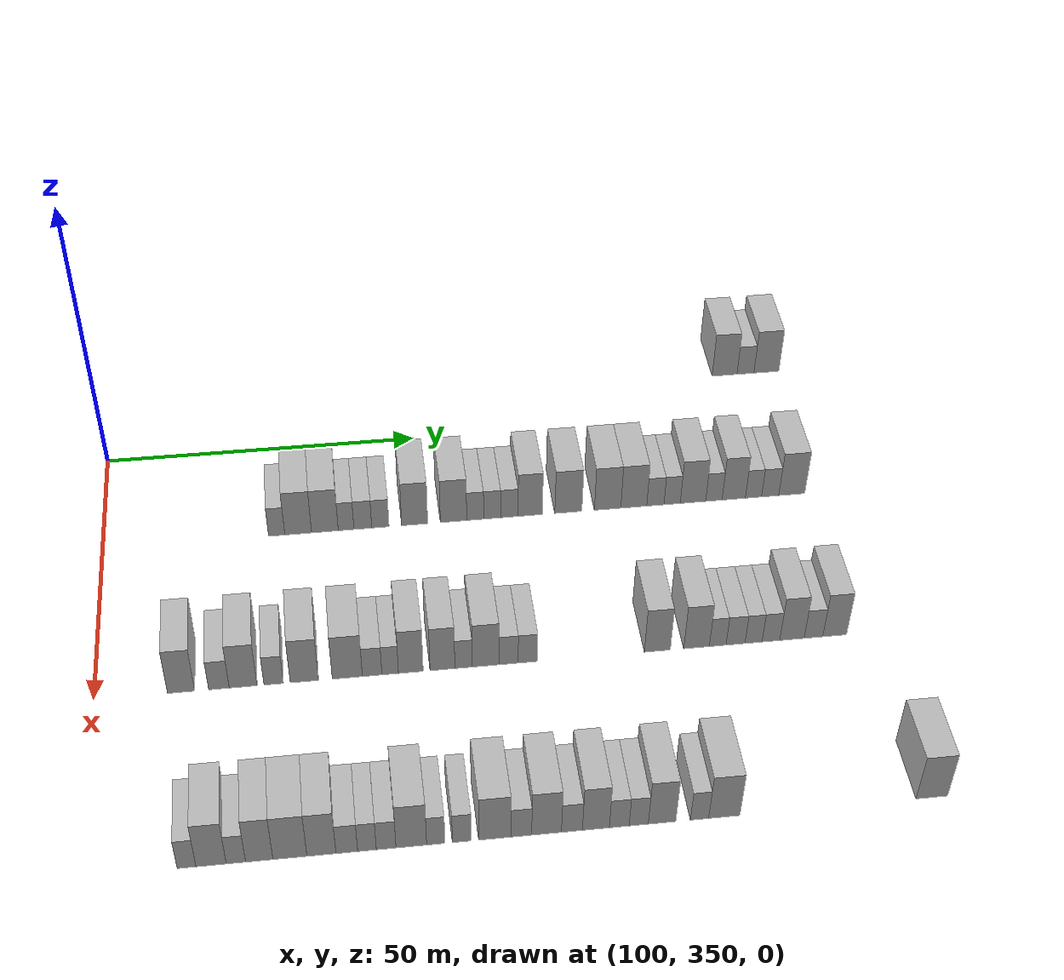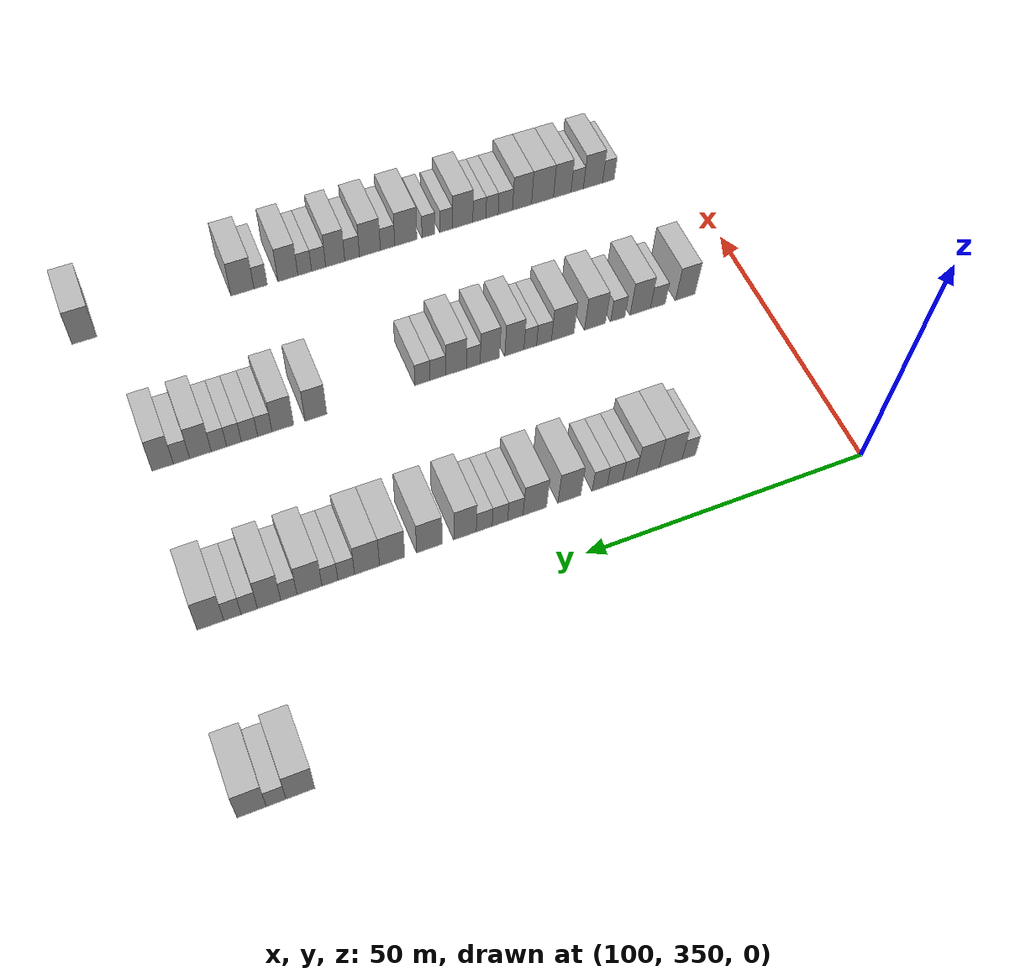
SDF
<sdf version="1.6">
 <world name="default">
  <model name="building_679">
   <static>1</static>
   <pose>85.0000 454.4036 0 0.000000 0.000000 0.000000</pose>
   <link name="link">
    <pose>0 0 4.50 0 0 0</pose>
    <collision name="collision"><geometry><box><size>10.0000 4.3484 9.0000</size></box></geometry></collision>
    <visual name="visual">
     <cast_shadows>0</cast_shadows>
     <geometry><box><size>10.0000 4.3484 9.0000</size></box></geometry>
     <material>
      <script>
       <uri>model://HANNAS_wall/materials/scripts</uri>
       <uri>model://HANNAS_wall/materials/textures</uri>
       <name>vrc/HANNAS_wall</name>
      </script>
     </material>
    </visual>
   </link>
  </model>
  <model name="building_680">
   <static>1</static>
   <pose>85.0000 458.0594 0 0.000000 0.000000 0.000000</pose>
   <link name="link">
    <pose>0 0 3.00 0 0 0</pose>
    <collision name="collision"><geometry><box><size>10.0000 2.9632 6.0000</size></box></geometry></collision>
    <visual name="visual">
     <cast_shadows>0</cast_shadows>
     <geometry><box><size>10.0000 2.9632 6.0000</size></box></geometry>
     <material>
      <script>
       <uri>model://HANNAS_wall/materials/scripts</uri>
       <uri>model://HANNAS_wall/materials/textures</uri>
       <name>vrc/HANNAS_wall</name>
      </script>
     </material>
    </visual>
   </link>
  </model>
  <model name="building_681">
   <static>1</static>
   <pose>85.0000 461.7241 0 0.000000 0.000000 0.000000</pose>
   <link name="link">
    <pose>0 0 4.50 0 0 0</pose>
    <collision name="collision"><geometry><box><size>10.0000 4.3664 9.0000</size></box></geometry></collision>
    <visual name="visual">
     <cast_shadows>0</cast_shadows>
     <geometry><box><size>10.0000 4.3664 9.0000</size></box></geometry>
     <material>
      <script>
       <uri>model://HANNAS_wall/materials/scripts</uri>
       <uri>model://HANNAS_wall/materials/textures</uri>
       <name>vrc/HANNAS_wall</name>
      </script>
     </material>
    </visual>
   </link>
  </model>
  <model name="building_883">
   <static>1</static>
   <pose>115.0000 376.9074 0 0.000000 0.000000 0.000000</pose>
   <link name="link">
    <pose>0 0 3.00 0 0 0</pose>
    <collision name="collision"><geometry><box><size>10.0000 2.5185 6.0000</size></box></geometry></collision>
    <visual name="visual">
     <cast_shadows>0</cast_shadows>
     <geometry><box><size>10.0000 2.5185 6.0000</size></box></geometry>
     <material>
      <script>
       <uri>model://HANNAS_wall/materials/scripts</uri>
       <uri>model://HANNAS_wall/materials/textures</uri>
       <name>vrc/HANNAS_wall</name>
      </script>
     </material>
    </visual>
   </link>
  </model>
  <model name="building_884">
   <static>1</static>
   <pose>115.0000 380.2617 0 0.000000 0.000000 0.000000</pose>
   <link name="link">
    <pose>0 0 4.50 0 0 0</pose>
    <collision name="collision"><geometry><box><size>10.0000 4.1900 9.0000</size></box></geometry></collision>
    <visual name="visual">
     <cast_shadows>0</cast_shadows>
     <geometry><box><size>10.0000 4.1900 9.0000</size></box></geometry>
     <material>
      <script>
       <uri>model://HANNAS_wall/materials/scripts</uri>
       <uri>model://HANNAS_wall/materials/textures</uri>
       <name>vrc/HANNAS_wall</name>
      </script>
     </material>
    </visual>
   </link>
  </model>
  <model name="building_885">
   <static>1</static>
   <pose>115.0000 384.4432 0 0.000000 0.000000 0.000000</pose>
   <link name="link">
    <pose>0 0 4.50 0 0 0</pose>
    <collision name="collision"><geometry><box><size>10.0000 4.1730 9.0000</size></box></geometry></collision>
    <visual name="visual">
     <cast_shadows>0</cast_shadows>
     <geometry><box><size>10.0000 4.1730 9.0000</size></box></geometry>
     <material>
      <script>
       <uri>model://HANNAS_wall/materials/scripts</uri>
       <uri>model://HANNAS_wall/materials/textures</uri>
       <name>vrc/HANNAS_wall</name>
      </script>
     </material>
    </visual>
   </link>
  </model>
  <model name="building_886">
   <static>1</static>
   <pose>115.0000 387.7569 0 0.000000 0.000000 0.000000</pose>
   <link name="link">
    <pose>0 0 3.00 0 0 0</pose>
    <collision name="collision"><geometry><box><size>10.0000 2.4545 6.0000</size></box></geometry></collision>
    <visual name="visual">
     <cast_shadows>0</cast_shadows>
     <geometry><box><size>10.0000 2.4545 6.0000</size></box></geometry>
     <material>
      <script>
       <uri>model://HANNAS_wall/materials/scripts</uri>
       <uri>model://HANNAS_wall/materials/textures</uri>
       <name>vrc/HANNAS_wall</name>
      </script>
     </material>
    </visual>
   </link>
  </model>
  <model name="building_887">
   <static>1</static>
   <pose>115.0000 390.3828 0 0.000000 0.000000 0.000000</pose>
   <link name="link">
    <pose>0 0 3.00 0 0 0</pose>
    <collision name="collision"><geometry><box><size>10.0000 2.7973 6.0000</size></box></geometry></collision>
    <visual name="visual">
     <cast_shadows>0</cast_shadows>
     <geometry><box><size>10.0000 2.7973 6.0000</size></box></geometry>
     <material>
      <script>
       <uri>model://HANNAS_wall/materials/scripts</uri>
       <uri>model://HANNAS_wall/materials/textures</uri>
       <name>vrc/HANNAS_wall</name>
      </script>
     </material>
    </visual>
   </link>
  </model>
  <model name="building_888">
   <static>1</static>
   <pose>115.0000 393.1407 0 0.000000 0.000000 0.000000</pose>
   <link name="link">
    <pose>0 0 3.00 0 0 0</pose>
    <collision name="collision"><geometry><box><size>10.0000 2.7185 6.0000</size></box></geometry></collision>
    <visual name="visual">
     <cast_shadows>0</cast_shadows>
     <geometry><box><size>10.0000 2.7185 6.0000</size></box></geometry>
     <material>
      <script>
       <uri>model://HANNAS_wall/materials/scripts</uri>
       <uri>model://HANNAS_wall/materials/textures</uri>
       <name>vrc/HANNAS_wall</name>
      </script>
     </material>
    </visual>
   </link>
  </model>
  <model name="building_889">
   <static>1</static>
   <pose>115.0000 398.5494 0 0.000000 0.000000 0.000000</pose>
   <link name="link">
    <pose>0 0 4.50 0 0 0</pose>
    <collision name="collision"><geometry><box><size>10.0000 4.0991 9.0000</size></box></geometry></collision>
    <visual name="visual">
     <cast_shadows>0</cast_shadows>
     <geometry><box><size>10.0000 4.0991 9.0000</size></box></geometry>
     <material>
      <script>
       <uri>model://HANNAS_wall/materials/scripts</uri>
       <uri>model://HANNAS_wall/materials/textures</uri>
       <name>vrc/HANNAS_wall</name>
      </script>
     </material>
    </visual>
   </link>
  </model>
  <model name="building_890">
   <static>1</static>
   <pose>115.0000 404.6810 0 0.000000 0.000000 0.000000</pose>
   <link name="link">
    <pose>0 0 4.50 0 0 0</pose>
    <collision name="collision"><geometry><box><size>10.0000 4.1640 9.0000</size></box></geometry></collision>
    <visual name="visual">
     <cast_shadows>0</cast_shadows>
     <geometry><box><size>10.0000 4.1640 9.0000</size></box></geometry>
     <material>
      <script>
       <uri>model://HANNAS_wall/materials/scripts</uri>
       <uri>model://HANNAS_wall/materials/textures</uri>
       <name>vrc/HANNAS_wall</name>
      </script>
     </material>
    </visual>
   </link>
  </model>
  <model name="building_891">
   <static>1</static>
   <pose>115.0000 408.1028 0 0.000000 0.000000 0.000000</pose>
   <link name="link">
    <pose>0 0 3.00 0 0 0</pose>
    <collision name="collision"><geometry><box><size>10.0000 2.6796 6.0000</size></box></geometry></collision>
    <visual name="visual">
     <cast_shadows>0</cast_shadows>
     <geometry><box><size>10.0000 2.6796 6.0000</size></box></geometry>
     <material>
      <script>
       <uri>model://HANNAS_wall/materials/scripts</uri>
       <uri>model://HANNAS_wall/materials/textures</uri>
       <name>vrc/HANNAS_wall</name>
      </script>
     </material>
    </visual>
   </link>
  </model>
  <model name="building_892">
   <static>1</static>
   <pose>115.0000 410.7962 0 0.000000 0.000000 0.000000</pose>
   <link name="link">
    <pose>0 0 3.00 0 0 0</pose>
    <collision name="collision"><geometry><box><size>10.0000 2.7072 6.0000</size></box></geometry></collision>
    <visual name="visual">
     <cast_shadows>0</cast_shadows>
     <geometry><box><size>10.0000 2.7072 6.0000</size></box></geometry>
     <material>
      <script>
       <uri>model://HANNAS_wall/materials/scripts</uri>
       <uri>model://HANNAS_wall/materials/textures</uri>
       <name>vrc/HANNAS_wall</name>
      </script>
     </material>
    </visual>
   </link>
  </model>
  <model name="building_893">
   <static>1</static>
   <pose>115.0000 413.5262 0 0.000000 0.000000 0.000000</pose>
   <link name="link">
    <pose>0 0 3.00 0 0 0</pose>
    <collision name="collision"><geometry><box><size>10.0000 2.7527 6.0000</size></box></geometry></collision>
    <visual name="visual">
     <cast_shadows>0</cast_shadows>
     <geometry><box><size>10.0000 2.7527 6.0000</size></box></geometry>
     <material>
      <script>
       <uri>model://HANNAS_wall/materials/scripts</uri>
       <uri>model://HANNAS_wall/materials/textures</uri>
       <name>vrc/HANNAS_wall</name>
      </script>
     </material>
    </visual>
   </link>
  </model>
  <model name="building_894">
   <static>1</static>
   <pose>115.0000 416.8444 0 0.000000 0.000000 0.000000</pose>
   <link name="link">
    <pose>0 0 4.50 0 0 0</pose>
    <collision name="collision"><geometry><box><size>10.0000 3.8837 9.0000</size></box></geometry></collision>
    <visual name="visual">
     <cast_shadows>0</cast_shadows>
     <geometry><box><size>10.0000 3.8837 9.0000</size></box></geometry>
     <material>
      <script>
       <uri>model://HANNAS_wall/materials/scripts</uri>
       <uri>model://HANNAS_wall/materials/textures</uri>
       <name>vrc/HANNAS_wall</name>
      </script>
     </material>
    </visual>
   </link>
  </model>
  <model name="building_895">
   <static>1</static>
   <pose>115.0000 422.9565 0 0.000000 0.000000 0.000000</pose>
   <link name="link">
    <pose>0 0 4.50 0 0 0</pose>
    <collision name="collision"><geometry><box><size>10.0000 4.3405 9.0000</size></box></geometry></collision>
    <visual name="visual">
     <cast_shadows>0</cast_shadows>
     <geometry><box><size>10.0000 4.3405 9.0000</size></box></geometry>
     <material>
      <script>
       <uri>model://HANNAS_wall/materials/scripts</uri>
       <uri>model://HANNAS_wall/materials/textures</uri>
       <name>vrc/HANNAS_wall</name>
      </script>
     </material>
    </visual>
   </link>
  </model>
  <model name="building_896">
   <static>1</static>
   <pose>115.0000 429.2485 0 0.000000 0.000000 0.000000</pose>
   <link name="link">
    <pose>0 0 4.50 0 0 0</pose>
    <collision name="collision"><geometry><box><size>10.0000 4.2434 9.0000</size></box></geometry></collision>
    <visual name="visual">
     <cast_shadows>0</cast_shadows>
     <geometry><box><size>10.0000 4.2434 9.0000</size></box></geometry>
     <material>
      <script>
       <uri>model://HANNAS_wall/materials/scripts</uri>
       <uri>model://HANNAS_wall/materials/textures</uri>
       <name>vrc/HANNAS_wall</name>
      </script>
     </material>
    </visual>
   </link>
  </model>
  <model name="building_897">
   <static>1</static>
   <pose>115.0000 433.4605 0 0.000000 0.000000 0.000000</pose>
   <link name="link">
    <pose>0 0 4.50 0 0 0</pose>
    <collision name="collision"><geometry><box><size>10.0000 4.1806 9.0000</size></box></geometry></collision>
    <visual name="visual">
     <cast_shadows>0</cast_shadows>
     <geometry><box><size>10.0000 4.1806 9.0000</size></box></geometry>
     <material>
      <script>
       <uri>model://HANNAS_wall/materials/scripts</uri>
       <uri>model://HANNAS_wall/materials/textures</uri>
       <name>vrc/HANNAS_wall</name>
      </script>
     </material>
    </visual>
   </link>
  </model>
  <model name="building_898">
   <static>1</static>
   <pose>115.0000 436.9382 0 0.000000 0.000000 0.000000</pose>
   <link name="link">
    <pose>0 0 3.00 0 0 0</pose>
    <collision name="collision"><geometry><box><size>10.0000 2.7749 6.0000</size></box></geometry></collision>
    <visual name="visual">
     <cast_shadows>0</cast_shadows>
     <geometry><box><size>10.0000 2.7749 6.0000</size></box></geometry>
     <material>
      <script>
       <uri>model://HANNAS_wall/materials/scripts</uri>
       <uri>model://HANNAS_wall/materials/textures</uri>
       <name>vrc/HANNAS_wall</name>
      </script>
     </material>
    </visual>
   </link>
  </model>
  <model name="building_899">
   <static>1</static>
   <pose>115.0000 439.6404 0 0.000000 0.000000 0.000000</pose>
   <link name="link">
    <pose>0 0 3.00 0 0 0</pose>
    <collision name="collision"><geometry><box><size>10.0000 2.6295 6.0000</size></box></geometry></collision>
    <visual name="visual">
     <cast_shadows>0</cast_shadows>
     <geometry><box><size>10.0000 2.6295 6.0000</size></box></geometry>
     <material>
      <script>
       <uri>model://HANNAS_wall/materials/scripts</uri>
       <uri>model://HANNAS_wall/materials/textures</uri>
       <name>vrc/HANNAS_wall</name>
      </script>
     </material>
    </visual>
   </link>
  </model>
  <model name="building_900">
   <static>1</static>
   <pose>115.0000 443.0121 0 0.000000 0.000000 0.000000</pose>
   <link name="link">
    <pose>0 0 4.50 0 0 0</pose>
    <collision name="collision"><geometry><box><size>10.0000 4.1140 9.0000</size></box></geometry></collision>
    <visual name="visual">
     <cast_shadows>0</cast_shadows>
     <geometry><box><size>10.0000 4.1140 9.0000</size></box></geometry>
     <material>
      <script>
       <uri>model://HANNAS_wall/materials/scripts</uri>
       <uri>model://HANNAS_wall/materials/textures</uri>
       <name>vrc/HANNAS_wall</name>
      </script>
     </material>
    </visual>
   </link>
  </model>
  <model name="building_901">
   <static>1</static>
   <pose>115.0000 446.3985 0 0.000000 0.000000 0.000000</pose>
   <link name="link">
    <pose>0 0 3.00 0 0 0</pose>
    <collision name="collision"><geometry><box><size>10.0000 2.6588 6.0000</size></box></geometry></collision>
    <visual name="visual">
     <cast_shadows>0</cast_shadows>
     <geometry><box><size>10.0000 2.6588 6.0000</size></box></geometry>
     <material>
      <script>
       <uri>model://HANNAS_wall/materials/scripts</uri>
       <uri>model://HANNAS_wall/materials/textures</uri>
       <name>vrc/HANNAS_wall</name>
      </script>
     </material>
    </visual>
   </link>
  </model>
  <model name="building_902">
   <static>1</static>
   <pose>115.0000 449.6192 0 0.000000 0.000000 0.000000</pose>
   <link name="link">
    <pose>0 0 4.50 0 0 0</pose>
    <collision name="collision"><geometry><box><size>10.0000 3.7826 9.0000</size></box></geometry></collision>
    <visual name="visual">
     <cast_shadows>0</cast_shadows>
     <geometry><box><size>10.0000 3.7826 9.0000</size></box></geometry>
     <material>
      <script>
       <uri>model://HANNAS_wall/materials/scripts</uri>
       <uri>model://HANNAS_wall/materials/textures</uri>
       <name>vrc/HANNAS_wall</name>
      </script>
     </material>
    </visual>
   </link>
  </model>
  <model name="building_903">
   <static>1</static>
   <pose>115.0000 452.8321 0 0.000000 0.000000 0.000000</pose>
   <link name="link">
    <pose>0 0 3.00 0 0 0</pose>
    <collision name="collision"><geometry><box><size>10.0000 2.6432 6.0000</size></box></geometry></collision>
    <visual name="visual">
     <cast_shadows>0</cast_shadows>
     <geometry><box><size>10.0000 2.6432 6.0000</size></box></geometry>
     <material>
      <script>
       <uri>model://HANNAS_wall/materials/scripts</uri>
       <uri>model://HANNAS_wall/materials/textures</uri>
       <name>vrc/HANNAS_wall</name>
      </script>
     </material>
    </visual>
   </link>
  </model>
  <model name="building_904">
   <static>1</static>
   <pose>115.0000 455.5482 0 0.000000 0.000000 0.000000</pose>
   <link name="link">
    <pose>0 0 3.00 0 0 0</pose>
    <collision name="collision"><geometry><box><size>10.0000 2.7888 6.0000</size></box></geometry></collision>
    <visual name="visual">
     <cast_shadows>0</cast_shadows>
     <geometry><box><size>10.0000 2.7888 6.0000</size></box></geometry>
     <material>
      <script>
       <uri>model://HANNAS_wall/materials/scripts</uri>
       <uri>model://HANNAS_wall/materials/textures</uri>
       <name>vrc/HANNAS_wall</name>
      </script>
     </material>
    </visual>
   </link>
  </model>
  <model name="building_905">
   <static>1</static>
   <pose>115.0000 459.0742 0 0.000000 0.000000 0.000000</pose>
   <link name="link">
    <pose>0 0 4.50 0 0 0</pose>
    <collision name="collision"><geometry><box><size>10.0000 4.2632 9.0000</size></box></geometry></collision>
    <visual name="visual">
     <cast_shadows>0</cast_shadows>
     <geometry><box><size>10.0000 4.2632 9.0000</size></box></geometry>
     <material>
      <script>
       <uri>model://HANNAS_wall/materials/scripts</uri>
       <uri>model://HANNAS_wall/materials/textures</uri>
       <name>vrc/HANNAS_wall</name>
      </script>
     </material>
    </visual>
   </link>
  </model>
  <model name="building_1122">
   <static>1</static>
   <pose>145.0000 362.4145 0 0.000000 0.000000 0.000000</pose>
   <link name="link">
    <pose>0 0 4.50 0 0 0</pose>
    <collision name="collision"><geometry><box><size>10.0000 3.8756 9.0000</size></box></geometry></collision>
    <visual name="visual">
     <cast_shadows>0</cast_shadows>
     <geometry><box><size>10.0000 3.8756 9.0000</size></box></geometry>
     <material>
      <script>
       <uri>model://HANNAS_wall/materials/scripts</uri>
       <uri>model://HANNAS_wall/materials/textures</uri>
       <name>vrc/HANNAS_wall</name>
      </script>
     </material>
    </visual>
   </link>
  </model>
  <model name="building_1123">
   <static>1</static>
   <pose>145.0000 367.8242 0 0.000000 0.000000 0.000000</pose>
   <link name="link">
    <pose>0 0 3.00 0 0 0</pose>
    <collision name="collision"><geometry><box><size>10.0000 2.9438 6.0000</size></box></geometry></collision>
    <visual name="visual">
     <cast_shadows>0</cast_shadows>
     <geometry><box><size>10.0000 2.9438 6.0000</size></box></geometry>
     <material>
      <script>
       <uri>model://HANNAS_wall/materials/scripts</uri>
       <uri>model://HANNAS_wall/materials/textures</uri>
       <name>vrc/HANNAS_wall</name>
      </script>
     </material>
    </visual>
   </link>
  </model>
  <model name="building_1124">
   <static>1</static>
   <pose>145.0000 371.2928 0 0.000000 0.000000 0.000000</pose>
   <link name="link">
    <pose>0 0 4.50 0 0 0</pose>
    <collision name="collision"><geometry><box><size>10.0000 3.9936 9.0000</size></box></geometry></collision>
    <visual name="visual">
     <cast_shadows>0</cast_shadows>
     <geometry><box><size>10.0000 3.9936 9.0000</size></box></geometry>
     <material>
      <script>
       <uri>model://HANNAS_wall/materials/scripts</uri>
       <uri>model://HANNAS_wall/materials/textures</uri>
       <name>vrc/HANNAS_wall</name>
      </script>
     </material>
    </visual>
   </link>
  </model>
  <model name="building_1125">
   <static>1</static>
   <pose>145.0000 375.6814 0 0.000000 0.000000 0.000000</pose>
   <link name="link">
    <pose>0 0 3.00 0 0 0</pose>
    <collision name="collision"><geometry><box><size>10.0000 2.7836 6.0000</size></box></geometry></collision>
    <visual name="visual">
     <cast_shadows>0</cast_shadows>
     <geometry><box><size>10.0000 2.7836 6.0000</size></box></geometry>
     <material>
      <script>
       <uri>model://HANNAS_wall/materials/scripts</uri>
       <uri>model://HANNAS_wall/materials/textures</uri>
       <name>vrc/HANNAS_wall</name>
      </script>
     </material>
    </visual>
   </link>
  </model>
  <model name="building_1126">
   <static>1</static>
   <pose>145.0000 380.1058 0 0.000000 0.000000 0.000000</pose>
   <link name="link">
    <pose>0 0 4.50 0 0 0</pose>
    <collision name="collision"><geometry><box><size>10.0000 4.0651 9.0000</size></box></geometry></collision>
    <visual name="visual">
     <cast_shadows>0</cast_shadows>
     <geometry><box><size>10.0000 4.0651 9.0000</size></box></geometry>
     <material>
      <script>
       <uri>model://HANNAS_wall/materials/scripts</uri>
       <uri>model://HANNAS_wall/materials/textures</uri>
       <name>vrc/HANNAS_wall</name>
      </script>
     </material>
    </visual>
   </link>
  </model>
  <model name="building_1127">
   <static>1</static>
   <pose>145.0000 386.3113 0 0.000000 0.000000 0.000000</pose>
   <link name="link">
    <pose>0 0 4.50 0 0 0</pose>
    <collision name="collision"><geometry><box><size>10.0000 4.3459 9.0000</size></box></geometry></collision>
    <visual name="visual">
     <cast_shadows>0</cast_shadows>
     <geometry><box><size>10.0000 4.3459 9.0000</size></box></geometry>
     <material>
      <script>
       <uri>model://HANNAS_wall/materials/scripts</uri>
       <uri>model://HANNAS_wall/materials/textures</uri>
       <name>vrc/HANNAS_wall</name>
      </script>
     </material>
    </visual>
   </link>
  </model>
  <model name="building_1128">
   <static>1</static>
   <pose>145.0000 389.9021 0 0.000000 0.000000 0.000000</pose>
   <link name="link">
    <pose>0 0 3.00 0 0 0</pose>
    <collision name="collision"><geometry><box><size>10.0000 2.8356 6.0000</size></box></geometry></collision>
    <visual name="visual">
     <cast_shadows>0</cast_shadows>
     <geometry><box><size>10.0000 2.8356 6.0000</size></box></geometry>
     <material>
      <script>
       <uri>model://HANNAS_wall/materials/scripts</uri>
       <uri>model://HANNAS_wall/materials/textures</uri>
       <name>vrc/HANNAS_wall</name>
      </script>
     </material>
    </visual>
   </link>
  </model>
  <model name="building_1129">
   <static>1</static>
   <pose>145.0000 392.5213 0 0.000000 0.000000 0.000000</pose>
   <link name="link">
    <pose>0 0 3.00 0 0 0</pose>
    <collision name="collision"><geometry><box><size>10.0000 2.4029 6.0000</size></box></geometry></collision>
    <visual name="visual">
     <cast_shadows>0</cast_shadows>
     <geometry><box><size>10.0000 2.4029 6.0000</size></box></geometry>
     <material>
      <script>
       <uri>model://HANNAS_wall/materials/scripts</uri>
       <uri>model://HANNAS_wall/materials/textures</uri>
       <name>vrc/HANNAS_wall</name>
      </script>
     </material>
    </visual>
   </link>
  </model>
  <model name="building_1130">
   <static>1</static>
   <pose>145.0000 395.5263 0 0.000000 0.000000 0.000000</pose>
   <link name="link">
    <pose>0 0 4.50 0 0 0</pose>
    <collision name="collision"><geometry><box><size>10.0000 3.6070 9.0000</size></box></geometry></collision>
    <visual name="visual">
     <cast_shadows>0</cast_shadows>
     <geometry><box><size>10.0000 3.6070 9.0000</size></box></geometry>
     <material>
      <script>
       <uri>model://HANNAS_wall/materials/scripts</uri>
       <uri>model://HANNAS_wall/materials/textures</uri>
       <name>vrc/HANNAS_wall</name>
      </script>
     </material>
    </visual>
   </link>
  </model>
  <model name="building_1131">
   <static>1</static>
   <pose>145.0000 400.1390 0 0.000000 0.000000 0.000000</pose>
   <link name="link">
    <pose>0 0 4.50 0 0 0</pose>
    <collision name="collision"><geometry><box><size>10.0000 3.6184 9.0000</size></box></geometry></collision>
    <visual name="visual">
     <cast_shadows>0</cast_shadows>
     <geometry><box><size>10.0000 3.6184 9.0000</size></box></geometry>
     <material>
      <script>
       <uri>model://HANNAS_wall/materials/scripts</uri>
       <uri>model://HANNAS_wall/materials/textures</uri>
       <name>vrc/HANNAS_wall</name>
      </script>
     </material>
    </visual>
   </link>
  </model>
  <model name="building_1132">
   <static>1</static>
   <pose>145.0000 403.2168 0 0.000000 0.000000 0.000000</pose>
   <link name="link">
    <pose>0 0 3.00 0 0 0</pose>
    <collision name="collision"><geometry><box><size>10.0000 2.5372 6.0000</size></box></geometry></collision>
    <visual name="visual">
     <cast_shadows>0</cast_shadows>
     <geometry><box><size>10.0000 2.5372 6.0000</size></box></geometry>
     <material>
      <script>
       <uri>model://HANNAS_wall/materials/scripts</uri>
       <uri>model://HANNAS_wall/materials/textures</uri>
       <name>vrc/HANNAS_wall</name>
      </script>
     </material>
    </visual>
   </link>
  </model>
  <model name="building_1133">
   <static>1</static>
   <pose>145.0000 406.4366 0 0.000000 0.000000 0.000000</pose>
   <link name="link">
    <pose>0 0 4.50 0 0 0</pose>
    <collision name="collision"><geometry><box><size>10.0000 3.9022 9.0000</size></box></geometry></collision>
    <visual name="visual">
     <cast_shadows>0</cast_shadows>
     <geometry><box><size>10.0000 3.9022 9.0000</size></box></geometry>
     <material>
      <script>
       <uri>model://HANNAS_wall/materials/scripts</uri>
       <uri>model://HANNAS_wall/materials/textures</uri>
       <name>vrc/HANNAS_wall</name>
      </script>
     </material>
    </visual>
   </link>
  </model>
  <model name="building_1134">
   <static>1</static>
   <pose>145.0000 409.8017 0 0.000000 0.000000 0.000000</pose>
   <link name="link">
    <pose>0 0 3.00 0 0 0</pose>
    <collision name="collision"><geometry><box><size>10.0000 2.8280 6.0000</size></box></geometry></collision>
    <visual name="visual">
     <cast_shadows>0</cast_shadows>
     <geometry><box><size>10.0000 2.8280 6.0000</size></box></geometry>
     <material>
      <script>
       <uri>model://HANNAS_wall/materials/scripts</uri>
       <uri>model://HANNAS_wall/materials/textures</uri>
       <name>vrc/HANNAS_wall</name>
      </script>
     </material>
    </visual>
   </link>
  </model>
  <model name="building_1135">
   <static>1</static>
   <pose>145.0000 412.6216 0 0.000000 0.000000 0.000000</pose>
   <link name="link">
    <pose>0 0 3.00 0 0 0</pose>
    <collision name="collision"><geometry><box><size>10.0000 2.8119 6.0000</size></box></geometry></collision>
    <visual name="visual">
     <cast_shadows>0</cast_shadows>
     <geometry><box><size>10.0000 2.8119 6.0000</size></box></geometry>
     <material>
      <script>
       <uri>model://HANNAS_wall/materials/scripts</uri>
       <uri>model://HANNAS_wall/materials/textures</uri>
       <name>vrc/HANNAS_wall</name>
      </script>
     </material>
    </visual>
   </link>
  </model>
  <model name="building_1136">
   <static>1</static>
   <pose>145.0000 431.8331 0 0.000000 0.000000 0.000000</pose>
   <link name="link">
    <pose>0 0 4.50 0 0 0</pose>
    <collision name="collision"><geometry><box><size>10.0000 3.8703 9.0000</size></box></geometry></collision>
    <visual name="visual">
     <cast_shadows>0</cast_shadows>
     <geometry><box><size>10.0000 3.8703 9.0000</size></box></geometry>
     <material>
      <script>
       <uri>model://HANNAS_wall/materials/scripts</uri>
       <uri>model://HANNAS_wall/materials/textures</uri>
       <name>vrc/HANNAS_wall</name>
      </script>
     </material>
    </visual>
   </link>
  </model>
  <model name="building_1137">
   <static>1</static>
   <pose>145.0000 437.6819 0 0.000000 0.000000 0.000000</pose>
   <link name="link">
    <pose>0 0 4.50 0 0 0</pose>
    <collision name="collision"><geometry><box><size>10.0000 3.8275 9.0000</size></box></geometry></collision>
    <visual name="visual">
     <cast_shadows>0</cast_shadows>
     <geometry><box><size>10.0000 3.8275 9.0000</size></box></geometry>
     <material>
      <script>
       <uri>model://HANNAS_wall/materials/scripts</uri>
       <uri>model://HANNAS_wall/materials/textures</uri>
       <name>vrc/HANNAS_wall</name>
      </script>
     </material>
    </visual>
   </link>
  </model>
  <model name="building_1138">
   <static>1</static>
   <pose>145.0000 440.8435 0 0.000000 0.000000 0.000000</pose>
   <link name="link">
    <pose>0 0 3.00 0 0 0</pose>
    <collision name="collision"><geometry><box><size>10.0000 2.4957 6.0000</size></box></geometry></collision>
    <visual name="visual">
     <cast_shadows>0</cast_shadows>
     <geometry><box><size>10.0000 2.4957 6.0000</size></box></geometry>
     <material>
      <script>
       <uri>model://HANNAS_wall/materials/scripts</uri>
       <uri>model://HANNAS_wall/materials/textures</uri>
       <name>vrc/HANNAS_wall</name>
      </script>
     </material>
    </visual>
   </link>
  </model>
  <model name="building_1139">
   <static>1</static>
   <pose>145.0000 443.5175 0 0.000000 0.000000 0.000000</pose>
   <link name="link">
    <pose>0 0 3.00 0 0 0</pose>
    <collision name="collision"><geometry><box><size>10.0000 2.8522 6.0000</size></box></geometry></collision>
    <visual name="visual">
     <cast_shadows>0</cast_shadows>
     <geometry><box><size>10.0000 2.8522 6.0000</size></box></geometry>
     <material>
      <script>
       <uri>model://HANNAS_wall/materials/scripts</uri>
       <uri>model://HANNAS_wall/materials/textures</uri>
       <name>vrc/HANNAS_wall</name>
      </script>
     </material>
    </visual>
   </link>
  </model>
  <model name="building_1140">
   <static>1</static>
   <pose>145.0000 446.2240 0 0.000000 0.000000 0.000000</pose>
   <link name="link">
    <pose>0 0 3.00 0 0 0</pose>
    <collision name="collision"><geometry><box><size>10.0000 2.5608 6.0000</size></box></geometry></collision>
    <visual name="visual">
     <cast_shadows>0</cast_shadows>
     <geometry><box><size>10.0000 2.5608 6.0000</size></box></geometry>
     <material>
      <script>
       <uri>model://HANNAS_wall/materials/scripts</uri>
       <uri>model://HANNAS_wall/materials/textures</uri>
       <name>vrc/HANNAS_wall</name>
      </script>
     </material>
    </visual>
   </link>
  </model>
  <model name="building_1141">
   <static>1</static>
   <pose>145.0000 448.8308 0 0.000000 0.000000 0.000000</pose>
   <link name="link">
    <pose>0 0 3.00 0 0 0</pose>
    <collision name="collision"><geometry><box><size>10.0000 2.6528 6.0000</size></box></geometry></collision>
    <visual name="visual">
     <cast_shadows>0</cast_shadows>
     <geometry><box><size>10.0000 2.6528 6.0000</size></box></geometry>
     <material>
      <script>
       <uri>model://HANNAS_wall/materials/scripts</uri>
       <uri>model://HANNAS_wall/materials/textures</uri>
       <name>vrc/HANNAS_wall</name>
      </script>
     </material>
    </visual>
   </link>
  </model>
  <model name="building_1142">
   <static>1</static>
   <pose>145.0000 452.0037 0 0.000000 0.000000 0.000000</pose>
   <link name="link">
    <pose>0 0 4.50 0 0 0</pose>
    <collision name="collision"><geometry><box><size>10.0000 3.6930 9.0000</size></box></geometry></collision>
    <visual name="visual">
     <cast_shadows>0</cast_shadows>
     <geometry><box><size>10.0000 3.6930 9.0000</size></box></geometry>
     <material>
      <script>
       <uri>model://HANNAS_wall/materials/scripts</uri>
       <uri>model://HANNAS_wall/materials/textures</uri>
       <name>vrc/HANNAS_wall</name>
      </script>
     </material>
    </visual>
   </link>
  </model>
  <model name="building_1143">
   <static>1</static>
   <pose>145.0000 455.2459 0 0.000000 0.000000 0.000000</pose>
   <link name="link">
    <pose>0 0 3.00 0 0 0</pose>
    <collision name="collision"><geometry><box><size>10.0000 2.7915 6.0000</size></box></geometry></collision>
    <visual name="visual">
     <cast_shadows>0</cast_shadows>
     <geometry><box><size>10.0000 2.7915 6.0000</size></box></geometry>
     <material>
      <script>
       <uri>model://HANNAS_wall/materials/scripts</uri>
       <uri>model://HANNAS_wall/materials/textures</uri>
       <name>vrc/HANNAS_wall</name>
      </script>
     </material>
    </visual>
   </link>
  </model>
  <model name="building_1144">
   <static>1</static>
   <pose>145.0000 458.4536 0 0.000000 0.000000 0.000000</pose>
   <link name="link">
    <pose>0 0 4.50 0 0 0</pose>
    <collision name="collision"><geometry><box><size>10.0000 3.6239 9.0000</size></box></geometry></collision>
    <visual name="visual">
     <cast_shadows>0</cast_shadows>
     <geometry><box><size>10.0000 3.6239 9.0000</size></box></geometry>
     <material>
      <script>
       <uri>model://HANNAS_wall/materials/scripts</uri>
       <uri>model://HANNAS_wall/materials/textures</uri>
       <name>vrc/HANNAS_wall</name>
      </script>
     </material>
    </visual>
   </link>
  </model>
  <model name="building_1349">
   <static>1</static>
   <pose>175.0000 363.4780 0 0.000000 0.000000 0.000000</pose>
   <link name="link">
    <pose>0 0 3.00 0 0 0</pose>
    <collision name="collision"><geometry><box><size>10.0000 2.4512 6.0000</size></box></geometry></collision>
    <visual name="visual">
     <cast_shadows>0</cast_shadows>
     <geometry><box><size>10.0000 2.4512 6.0000</size></box></geometry>
     <material>
      <script>
       <uri>model://HANNAS_wall/materials/scripts</uri>
       <uri>model://HANNAS_wall/materials/textures</uri>
       <name>vrc/HANNAS_wall</name>
      </script>
     </material>
    </visual>
   </link>
  </model>
  <model name="building_1350">
   <static>1</static>
   <pose>175.0000 366.6882 0 0.000000 0.000000 0.000000</pose>
   <link name="link">
    <pose>0 0 4.50 0 0 0</pose>
    <collision name="collision"><geometry><box><size>10.0000 3.9691 9.0000</size></box></geometry></collision>
    <visual name="visual">
     <cast_shadows>0</cast_shadows>
     <geometry><box><size>10.0000 3.9691 9.0000</size></box></geometry>
     <material>
      <script>
       <uri>model://HANNAS_wall/materials/scripts</uri>
       <uri>model://HANNAS_wall/materials/textures</uri>
       <name>vrc/HANNAS_wall</name>
      </script>
     </material>
    </visual>
   </link>
  </model>
  <model name="building_1351">
   <static>1</static>
   <pose>175.0000 369.9443 0 0.000000 0.000000 0.000000</pose>
   <link name="link">
    <pose>0 0 3.00 0 0 0</pose>
    <collision name="collision"><geometry><box><size>10.0000 2.5431 6.0000</size></box></geometry></collision>
    <visual name="visual">
     <cast_shadows>0</cast_shadows>
     <geometry><box><size>10.0000 2.5431 6.0000</size></box></geometry>
     <material>
      <script>
       <uri>model://HANNAS_wall/materials/scripts</uri>
       <uri>model://HANNAS_wall/materials/textures</uri>
       <name>vrc/HANNAS_wall</name>
      </script>
     </material>
    </visual>
   </link>
  </model>
  <model name="building_1352">
   <static>1</static>
   <pose>175.0000 373.0199 0 0.000000 0.000000 0.000000</pose>
   <link name="link">
    <pose>0 0 4.50 0 0 0</pose>
    <collision name="collision"><geometry><box><size>10.0000 3.6080 9.0000</size></box></geometry></collision>
    <visual name="visual">
     <cast_shadows>0</cast_shadows>
     <geometry><box><size>10.0000 3.6080 9.0000</size></box></geometry>
     <material>
      <script>
       <uri>model://HANNAS_wall/materials/scripts</uri>
       <uri>model://HANNAS_wall/materials/textures</uri>
       <name>vrc/HANNAS_wall</name>
      </script>
     </material>
    </visual>
   </link>
  </model>
  <model name="building_1353">
   <static>1</static>
   <pose>175.0000 377.0663 0 0.000000 0.000000 0.000000</pose>
   <link name="link">
    <pose>0 0 4.50 0 0 0</pose>
    <collision name="collision"><geometry><box><size>10.0000 4.4849 9.0000</size></box></geometry></collision>
    <visual name="visual">
     <cast_shadows>0</cast_shadows>
     <geometry><box><size>10.0000 4.4849 9.0000</size></box></geometry>
     <material>
      <script>
       <uri>model://HANNAS_wall/materials/scripts</uri>
       <uri>model://HANNAS_wall/materials/textures</uri>
       <name>vrc/HANNAS_wall</name>
      </script>
     </material>
    </visual>
   </link>
  </model>
  <model name="building_1354">
   <static>1</static>
   <pose>175.0000 381.2344 0 0.000000 0.000000 0.000000</pose>
   <link name="link">
    <pose>0 0 4.50 0 0 0</pose>
    <collision name="collision"><geometry><box><size>10.0000 3.8512 9.0000</size></box></geometry></collision>
    <visual name="visual">
     <cast_shadows>0</cast_shadows>
     <geometry><box><size>10.0000 3.8512 9.0000</size></box></geometry>
     <material>
      <script>
       <uri>model://HANNAS_wall/materials/scripts</uri>
       <uri>model://HANNAS_wall/materials/textures</uri>
       <name>vrc/HANNAS_wall</name>
      </script>
     </material>
    </visual>
   </link>
  </model>
  <model name="building_1355">
   <static>1</static>
   <pose>175.0000 384.6024 0 0.000000 0.000000 0.000000</pose>
   <link name="link">
    <pose>0 0 3.00 0 0 0</pose>
    <collision name="collision"><geometry><box><size>10.0000 2.8850 6.0000</size></box></geometry></collision>
    <visual name="visual">
     <cast_shadows>0</cast_shadows>
     <geometry><box><size>10.0000 2.8850 6.0000</size></box></geometry>
     <material>
      <script>
       <uri>model://HANNAS_wall/materials/scripts</uri>
       <uri>model://HANNAS_wall/materials/textures</uri>
       <name>vrc/HANNAS_wall</name>
      </script>
     </material>
    </visual>
   </link>
  </model>
  <model name="building_1356">
   <static>1</static>
   <pose>175.0000 387.2802 0 0.000000 0.000000 0.000000</pose>
   <link name="link">
    <pose>0 0 3.00 0 0 0</pose>
    <collision name="collision"><geometry><box><size>10.0000 2.4706 6.0000</size></box></geometry></collision>
    <visual name="visual">
     <cast_shadows>0</cast_shadows>
     <geometry><box><size>10.0000 2.4706 6.0000</size></box></geometry>
     <material>
      <script>
       <uri>model://HANNAS_wall/materials/scripts</uri>
       <uri>model://HANNAS_wall/materials/textures</uri>
       <name>vrc/HANNAS_wall</name>
      </script>
     </material>
    </visual>
   </link>
  </model>
  <model name="building_1357">
   <static>1</static>
   <pose>175.0000 389.8256 0 0.000000 0.000000 0.000000</pose>
   <link name="link">
    <pose>0 0 3.00 0 0 0</pose>
    <collision name="collision"><geometry><box><size>10.0000 2.6200 6.0000</size></box></geometry></collision>
    <visual name="visual">
     <cast_shadows>0</cast_shadows>
     <geometry><box><size>10.0000 2.6200 6.0000</size></box></geometry>
     <material>
      <script>
       <uri>model://HANNAS_wall/materials/scripts</uri>
       <uri>model://HANNAS_wall/materials/textures</uri>
       <name>vrc/HANNAS_wall</name>
      </script>
     </material>
    </visual>
   </link>
  </model>
  <model name="building_1358">
   <static>1</static>
   <pose>175.0000 393.1809 0 0.000000 0.000000 0.000000</pose>
   <link name="link">
    <pose>0 0 4.50 0 0 0</pose>
    <collision name="collision"><geometry><box><size>10.0000 4.0906 9.0000</size></box></geometry></collision>
    <visual name="visual">
     <cast_shadows>0</cast_shadows>
     <geometry><box><size>10.0000 4.0906 9.0000</size></box></geometry>
     <material>
      <script>
       <uri>model://HANNAS_wall/materials/scripts</uri>
       <uri>model://HANNAS_wall/materials/textures</uri>
       <name>vrc/HANNAS_wall</name>
      </script>
     </material>
    </visual>
   </link>
  </model>
  <model name="building_1359">
   <static>1</static>
   <pose>175.0000 396.4503 0 0.000000 0.000000 0.000000</pose>
   <link name="link">
    <pose>0 0 3.00 0 0 0</pose>
    <collision name="collision"><geometry><box><size>10.0000 2.4482 6.0000</size></box></geometry></collision>
    <visual name="visual">
     <cast_shadows>0</cast_shadows>
     <geometry><box><size>10.0000 2.4482 6.0000</size></box></geometry>
     <material>
      <script>
       <uri>model://HANNAS_wall/materials/scripts</uri>
       <uri>model://HANNAS_wall/materials/textures</uri>
       <name>vrc/HANNAS_wall</name>
      </script>
     </material>
    </visual>
   </link>
  </model>
  <model name="building_1360">
   <static>1</static>
   <pose>175.0000 399.9391 0 0.000000 0.000000 0.000000</pose>
   <link name="link">
    <pose>0 0 3.00 0 0 0</pose>
    <collision name="collision"><geometry><box><size>10.0000 2.5294 6.0000</size></box></geometry></collision>
    <visual name="visual">
     <cast_shadows>0</cast_shadows>
     <geometry><box><size>10.0000 2.5294 6.0000</size></box></geometry>
     <material>
      <script>
       <uri>model://HANNAS_wall/materials/scripts</uri>
       <uri>model://HANNAS_wall/materials/textures</uri>
       <name>vrc/HANNAS_wall</name>
      </script>
     </material>
    </visual>
   </link>
  </model>
  <model name="building_1361">
   <static>1</static>
   <pose>175.0000 404.3644 0 0.000000 0.000000 0.000000</pose>
   <link name="link">
    <pose>0 0 4.50 0 0 0</pose>
    <collision name="collision"><geometry><box><size>10.0000 4.3213 9.0000</size></box></geometry></collision>
    <visual name="visual">
     <cast_shadows>0</cast_shadows>
     <geometry><box><size>10.0000 4.3213 9.0000</size></box></geometry>
     <material>
      <script>
       <uri>model://HANNAS_wall/materials/scripts</uri>
       <uri>model://HANNAS_wall/materials/textures</uri>
       <name>vrc/HANNAS_wall</name>
      </script>
     </material>
    </visual>
   </link>
  </model>
  <model name="building_1362">
   <static>1</static>
   <pose>175.0000 407.9266 0 0.000000 0.000000 0.000000</pose>
   <link name="link">
    <pose>0 0 3.00 0 0 0</pose>
    <collision name="collision"><geometry><box><size>10.0000 2.8030 6.0000</size></box></geometry></collision>
    <visual name="visual">
     <cast_shadows>0</cast_shadows>
     <geometry><box><size>10.0000 2.8030 6.0000</size></box></geometry>
     <material>
      <script>
       <uri>model://HANNAS_wall/materials/scripts</uri>
       <uri>model://HANNAS_wall/materials/textures</uri>
       <name>vrc/HANNAS_wall</name>
      </script>
     </material>
    </visual>
   </link>
  </model>
  <model name="building_1363">
   <static>1</static>
   <pose>175.0000 411.3450 0 0.000000 0.000000 0.000000</pose>
   <link name="link">
    <pose>0 0 4.50 0 0 0</pose>
    <collision name="collision"><geometry><box><size>10.0000 4.0338 9.0000</size></box></geometry></collision>
    <visual name="visual">
     <cast_shadows>0</cast_shadows>
     <geometry><box><size>10.0000 4.0338 9.0000</size></box></geometry>
     <material>
      <script>
       <uri>model://HANNAS_wall/materials/scripts</uri>
       <uri>model://HANNAS_wall/materials/textures</uri>
       <name>vrc/HANNAS_wall</name>
      </script>
     </material>
    </visual>
   </link>
  </model>
  <model name="building_1364">
   <static>1</static>
   <pose>175.0000 414.7830 0 0.000000 0.000000 0.000000</pose>
   <link name="link">
    <pose>0 0 3.00 0 0 0</pose>
    <collision name="collision"><geometry><box><size>10.0000 2.8423 6.0000</size></box></geometry></collision>
    <visual name="visual">
     <cast_shadows>0</cast_shadows>
     <geometry><box><size>10.0000 2.8423 6.0000</size></box></geometry>
     <material>
      <script>
       <uri>model://HANNAS_wall/materials/scripts</uri>
       <uri>model://HANNAS_wall/materials/textures</uri>
       <name>vrc/HANNAS_wall</name>
      </script>
     </material>
    </visual>
   </link>
  </model>
  <model name="building_1365">
   <static>1</static>
   <pose>175.0000 418.0333 0 0.000000 0.000000 0.000000</pose>
   <link name="link">
    <pose>0 0 4.50 0 0 0</pose>
    <collision name="collision"><geometry><box><size>10.0000 3.6584 9.0000</size></box></geometry></collision>
    <visual name="visual">
     <cast_shadows>0</cast_shadows>
     <geometry><box><size>10.0000 3.6584 9.0000</size></box></geometry>
     <material>
      <script>
       <uri>model://HANNAS_wall/materials/scripts</uri>
       <uri>model://HANNAS_wall/materials/textures</uri>
       <name>vrc/HANNAS_wall</name>
      </script>
     </material>
    </visual>
   </link>
  </model>
  <model name="building_1366">
   <static>1</static>
   <pose>175.0000 421.2091 0 0.000000 0.000000 0.000000</pose>
   <link name="link">
    <pose>0 0 3.00 0 0 0</pose>
    <collision name="collision"><geometry><box><size>10.0000 2.6931 6.0000</size></box></geometry></collision>
    <visual name="visual">
     <cast_shadows>0</cast_shadows>
     <geometry><box><size>10.0000 2.6931 6.0000</size></box></geometry>
     <material>
      <script>
       <uri>model://HANNAS_wall/materials/scripts</uri>
       <uri>model://HANNAS_wall/materials/textures</uri>
       <name>vrc/HANNAS_wall</name>
      </script>
     </material>
    </visual>
   </link>
  </model>
  <model name="building_1367">
   <static>1</static>
   <pose>175.0000 423.8605 0 0.000000 0.000000 0.000000</pose>
   <link name="link">
    <pose>0 0 3.00 0 0 0</pose>
    <collision name="collision"><geometry><box><size>10.0000 2.6097 6.0000</size></box></geometry></collision>
    <visual name="visual">
     <cast_shadows>0</cast_shadows>
     <geometry><box><size>10.0000 2.6097 6.0000</size></box></geometry>
     <material>
      <script>
       <uri>model://HANNAS_wall/materials/scripts</uri>
       <uri>model://HANNAS_wall/materials/textures</uri>
       <name>vrc/HANNAS_wall</name>
      </script>
     </material>
    </visual>
   </link>
  </model>
  <model name="building_1368">
   <static>1</static>
   <pose>175.0000 427.0422 0 0.000000 0.000000 0.000000</pose>
   <link name="link">
    <pose>0 0 4.50 0 0 0</pose>
    <collision name="collision"><geometry><box><size>10.0000 3.7536 9.0000</size></box></geometry></collision>
    <visual name="visual">
     <cast_shadows>0</cast_shadows>
     <geometry><box><size>10.0000 3.7536 9.0000</size></box></geometry>
     <material>
      <script>
       <uri>model://HANNAS_wall/materials/scripts</uri>
       <uri>model://HANNAS_wall/materials/textures</uri>
       <name>vrc/HANNAS_wall</name>
      </script>
     </material>
    </visual>
   </link>
  </model>
  <model name="building_1369">
   <static>1</static>
   <pose>175.0000 432.1703 0 0.000000 0.000000 0.000000</pose>
   <link name="link">
    <pose>0 0 3.00 0 0 0</pose>
    <collision name="collision"><geometry><box><size>10.0000 2.5027 6.0000</size></box></geometry></collision>
    <visual name="visual">
     <cast_shadows>0</cast_shadows>
     <geometry><box><size>10.0000 2.5027 6.0000</size></box></geometry>
     <material>
      <script>
       <uri>model://HANNAS_wall/materials/scripts</uri>
       <uri>model://HANNAS_wall/materials/textures</uri>
       <name>vrc/HANNAS_wall</name>
      </script>
     </material>
    </visual>
   </link>
  </model>
  <model name="building_1370">
   <static>1</static>
   <pose>175.0000 435.5724 0 0.000000 0.000000 0.000000</pose>
   <link name="link">
    <pose>0 0 4.50 0 0 0</pose>
    <collision name="collision"><geometry><box><size>10.0000 4.3015 9.0000</size></box></geometry></collision>
    <visual name="visual">
     <cast_shadows>0</cast_shadows>
     <geometry><box><size>10.0000 4.3015 9.0000</size></box></geometry>
     <material>
      <script>
       <uri>model://HANNAS_wall/materials/scripts</uri>
       <uri>model://HANNAS_wall/materials/textures</uri>
       <name>vrc/HANNAS_wall</name>
      </script>
     </material>
    </visual>
   </link>
  </model>
  <model name="building_1371">
   <static>1</static>
   <pose>175.0000 464.3719 0 0.000000 0.000000 0.000000</pose>
   <link name="link">
    <pose>0 0 4.50 0 0 0</pose>
    <collision name="collision"><geometry><box><size>10.0000 4.4325 9.0000</size></box></geometry></collision>
    <visual name="visual">
     <cast_shadows>0</cast_shadows>
     <geometry><box><size>10.0000 4.4325 9.0000</size></box></geometry>
     <material>
      <script>
       <uri>model://HANNAS_wall/materials/scripts</uri>
       <uri>model://HANNAS_wall/materials/textures</uri>
       <name>vrc/HANNAS_wall</name>
      </script>
     </material>
    </visual>
   </link>
  </model>
 </world>
</sdf>
